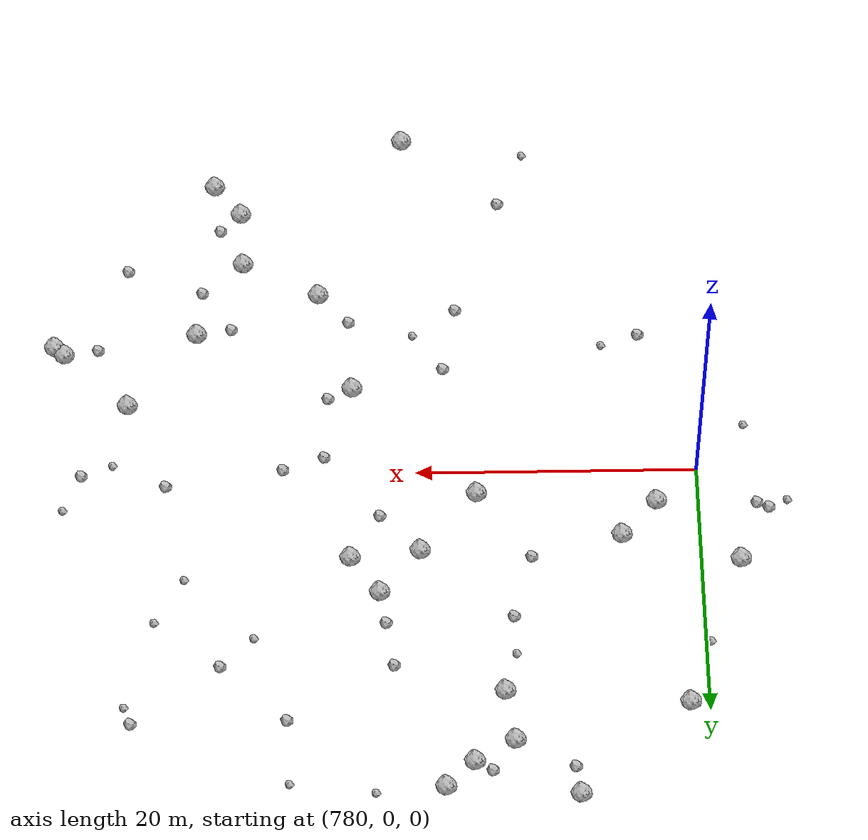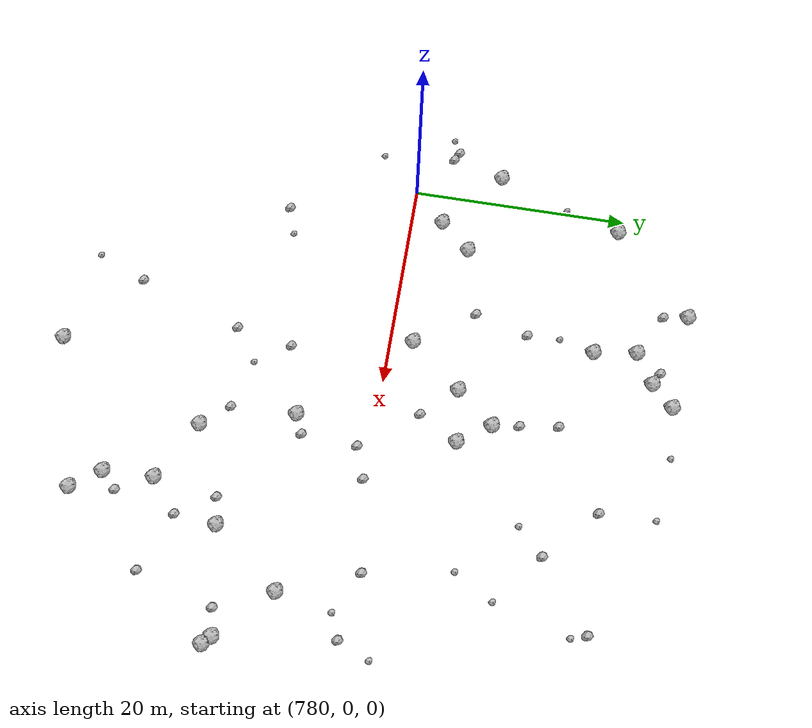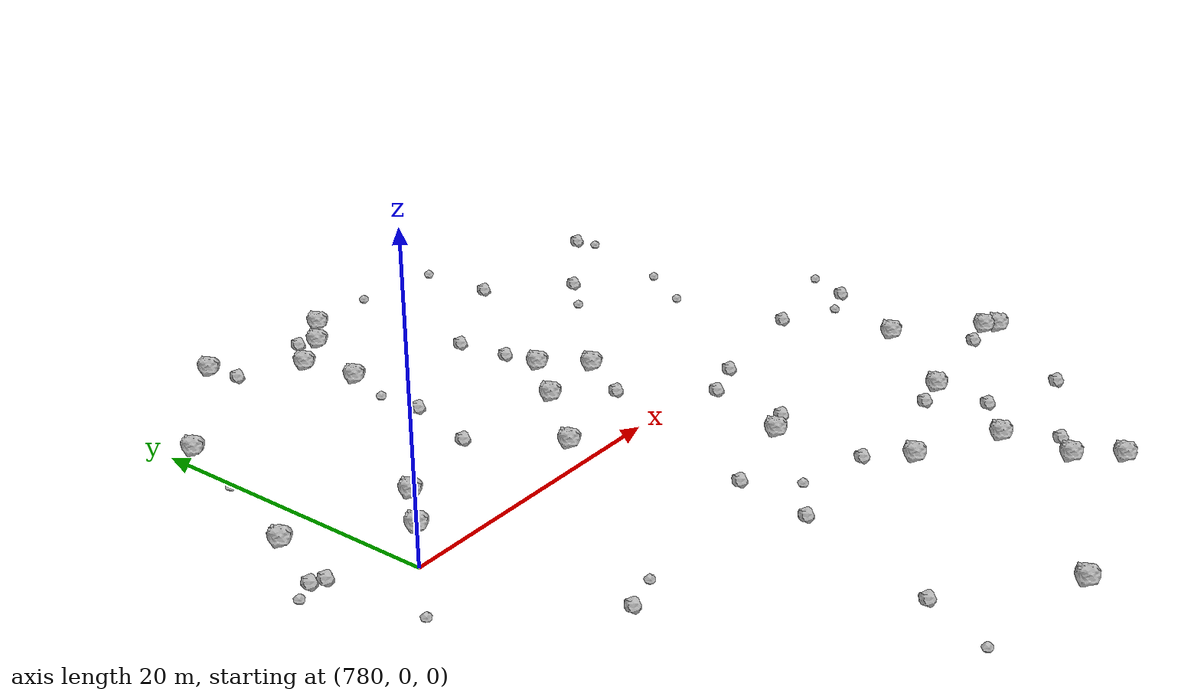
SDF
<sdf version="1.6">
 <world name="default">
  <include><uri>model://sun</uri></include>
  <model name="rock1_20_4">
   <include><uri>model://rock1</uri><pose>820.6350945711606 -5.886070270674416 0.5 0 0 0</pose></include>
  </model>
  <model name="rock1_20_5">
   <include><uri>model://rock1</uri><pose>789.174302273459 26.735412773269054 0.5 0 0 0</pose></include>
  </model>
  <model name="rock1_20_6">
   <include><uri>model://rock1</uri><pose>812.3763562479456 -18.41329730904943 0.5 0 0 0</pose></include>
  </model>
  <model name="rock1_20_7">
   <include><uri>model://rock1</uri><pose>796.3596019483537 24.06808977951519 0.5 0 0 0</pose></include>
  </model>
  <model name="rock1_20_8">
   <include><uri>model://rock1</uri><pose>804.748992065347 7.362493705190836 0.5 0 0 0</pose></include>
  </model>
  <model name="rock1_20_9">
   <include><uri>model://rock1</uri><pose>815.7095701272895 -12.098578191615047 0.5 0 0 0</pose></include>
  </model>
  <model name="rock1_20_10">
   <include><uri>model://rock1</uri><pose>781.3753424263355 19.5428205492751 0.5 0 0 0</pose></include>
  </model>
  <model name="rock1_20_11">
   <include><uri>model://rock1</uri><pose>802.7063896750199 10.270308584062555 0.5 0 0 0</pose></include>
  </model>
  <model name="rock1_20_12">
   <include><uri>model://rock1</uri><pose>799.8113386436355 6.8199711278421375 0.5 0 0 0</pose></include>
  </model>
  <model name="rock1_20_13">
   <include><uri>model://rock1</uri><pose>804.4942257574214 -7.160208227888944 0.5 0 0 0</pose></include>
  </model>
  <model name="rock1_20_14">
   <include><uri>model://rock1</uri><pose>794.1233192166974 18.477369264971507 0.5 0 0 0</pose></include>
  </model>
  <model name="rock1_20_15">
   <include><uri>model://rock1</uri><pose>785.5650849691579 5.699840650765324 0.5 0 0 0</pose></include>
  </model>
  <model name="rock1_20_16">
   <include><uri>model://rock1</uri><pose>800.6203771409281 -29.664151219868845 0.5 0 0 0</pose></include>
  </model>
  <model name="rock1_20_17">
   <include><uri>model://rock1</uri><pose>814.4836251054741 -25.578899734403475 0.5 0 0 0</pose></include>
  </model>
  <model name="rock1_20_18">
   <include><uri>model://rock1</uri><pose>825.2741021052876 -10.431142615567598 0.5 0 0 0</pose></include>
  </model>
  <model name="rock1_20_19">
   <include><uri>model://rock1</uri><pose>783.0146849213666 2.886046725405336 0.5 0 0 0</pose></include>
  </model>
  <model name="rock1_20_20">
   <include><uri>model://rock1</uri><pose>793.5373683498824 22.412171157085957 0.5 0 0 0</pose></include>
  </model>
  <model name="rock1_20_21">
   <include><uri>model://rock1</uri><pose>795.7491599494177 2.0506327617818414 0.5 0 0 0</pose></include>
  </model>
  <model name="rock1_20_22">
   <include><uri>model://rock1</uri><pose>798.3585958299683 26.029351957672155 0.5 0 0 0</pose></include>
  </model>
  <model name="rock1_20_23">
   <include><uri>model://rock1</uri><pose>812.5572141178634 -22.99430785112147 0.5 0 0 0</pose></include>
  </model>
  <model name="rock1_20_24">
   <include><uri>model://rock1</uri><pose>806.8779908178344 -15.524864762651836 0.5 0 0 0</pose></include>
  </model>
  <model name="rock1_20_25">
   <include><uri>model://rock1</uri><pose>825.9938034220598 -11.106890980946297 0.5 0 0 0</pose></include>
  </model>
  <model name="rock1_20_26">
   <include><uri>model://rock1</uri><pose>777.2761912708451 7.868366127772987 0.5 0 0 0</pose></include>
  </model>
  <model name="rock2_20_0">
   <include><uri>model://rock2</uri><pose>823.8045279501354 0.07975984007894965 0.3 0 0 0</pose></include>
  </model>
  <model name="rock2_20_1">
   <include><uri>model://rock2</uri><pose>801.771770372367 16.222175576323536 0.3 0 0 0</pose></include>
  </model>
  <model name="rock2_20_2">
   <include><uri>model://rock2</uri><pose>809.2006279529448 20.56500810708588 0.3 0 0 0</pose></include>
  </model>
  <model name="rock2_20_3">
   <include><uri>model://rock2</uri><pose>820.7469335932917 -17.966929379298126 0.3 0 0 0</pose></include>
  </model>
  <model name="rock2_20_4">
   <include><uri>model://rock2</uri><pose>802.2898200401646 12.736333977159248 0.3 0 0 0</pose></include>
  </model>
  <model name="rock2_20_5">
   <include><uri>model://rock2</uri><pose>813.2036470979123 -12.594342956008845 0.3 0 0 0</pose></include>
  </model>
  <model name="rock2_20_6">
   <include><uri>model://rock2</uri><pose>822.8192881729113 -10.887103272479123 0.3 0 0 0</pose></include>
  </model>
  <model name="rock2_20_7">
   <include><uri>model://rock2</uri><pose>775.8899213612169 3.045422776606202 0.3 0 0 0</pose></include>
  </model>
  <model name="rock2_20_8">
   <include><uri>model://rock2</uri><pose>791.9731753733087 7.39188990686165 0.3 0 0 0</pose></include>
  </model>
  <model name="rock2_20_9">
   <include><uri>model://rock2</uri><pose>817.8013192993257 1.0750269665148373 0.3 0 0 0</pose></include>
  </model>
  <model name="rock2_20_10">
   <include><uri>model://rock2</uri><pose>815.3232579383952 -15.910757192301372 0.3 0 0 0</pose></include>
  </model>
  <model name="rock2_20_11">
   <include><uri>model://rock2</uri><pose>783.7472780007181 -11.703090981496313 0.3 0 0 0</pose></include>
  </model>
  <model name="rock2_20_12">
   <include><uri>model://rock2</uri><pose>804.6933495007237 -13.118758626076211 0.3 0 0 0</pose></include>
  </model>
  <model name="rock2_20_13">
   <include><uri>model://rock2</uri><pose>793.3579517313858 12.33846834143867 0.3 0 0 0</pose></include>
  </model>
  <model name="rock2_20_14">
   <include><uri>model://rock2</uri><pose>809.4678825465874 -0.22625874869687124 0.3 0 0 0</pose></include>
  </model>
  <model name="rock2_20_15">
   <include><uri>model://rock2</uri><pose>806.230208976774 -6.361623056017464 0.3 0 0 0</pose></include>
  </model>
  <model name="rock2_20_16">
   <include><uri>model://rock2</uri><pose>814.0232911935135 -21.555299323820048 0.3 0 0 0</pose></include>
  </model>
  <model name="rock2_20_17">
   <include><uri>model://rock2</uri><pose>802.6158949766377 3.795293628187167 0.3 0 0 0</pose></include>
  </model>
  <model name="rock2_20_18">
   <include><uri>model://rock2</uri><pose>813.8381240358872 16.163286068862476 0.3 0 0 0</pose></include>
  </model>
  <model name="rock2_20_19">
   <include><uri>model://rock2</uri><pose>775.0613225388645 3.4456946327627023 0.3 0 0 0</pose></include>
  </model>
  <model name="rock2_20_20">
   <include><uri>model://rock2</uri><pose>795.1374533014897 24.73309095741778 0.3 0 0 0</pose></include>
  </model>
  <model name="rock2_20_21">
   <include><uri>model://rock2</uri><pose>789.4649412253866 24.510589043099337 0.3 0 0 0</pose></include>
  </model>
  <model name="rock2_20_22">
   <include><uri>model://rock2</uri><pose>819.9771104838715 20.70184599855446 0.3 0 0 0</pose></include>
  </model>
  <model name="rock2_20_23">
   <include><uri>model://rock2</uri><pose>806.5224293923878 -1.2693754602583454 0.3 0 0 0</pose></include>
  </model>
  <model name="rock2_20_24">
   <include><uri>model://rock2</uri><pose>793.6175438310157 -23.77370292303079 0.3 0 0 0</pose></include>
  </model>
  <model name="rock2_20_25">
   <include><uri>model://rock2</uri><pose>796.9464578670767 -14.091346917966494 0.3 0 0 0</pose></include>
  </model>
  <model name="rock2_20_26">
   <include><uri>model://rock2</uri><pose>797.9340320227461 -8.86828763507744 0.3 0 0 0</pose></include>
  </model>
  <model name="rock3_20_0">
   <include><uri>model://rock3</uri><pose>809.010242648686 25.572507670611813 0.2 0 0 0</pose></include>
  </model>
  <model name="rock3_20_1">
   <include><uri>model://rock3</uri><pose>803.1096869960559 26.338917963047578 0.2 0 0 0</pose></include>
  </model>
  <model name="rock3_20_2">
   <include><uri>model://rock3</uri><pose>821.5607650165263 -0.8566355344684702 0.2 0 0 0</pose></include>
  </model>
  <model name="rock3_20_3">
   <include><uri>model://rock3</uri><pose>800.0406485074192 -11.950498645989317 0.2 0 0 0</pose></include>
  </model>
  <model name="rock3_20_4">
   <include><uri>model://rock3</uri><pose>816.3711940659747 8.910266427128597 0.2 0 0 0</pose></include>
  </model>
  <model name="rock3_20_5">
   <include><uri>model://rock3</uri><pose>791.6531935619727 -28.390009245543208 0.2 0 0 0</pose></include>
  </model>
  <model name="rock3_20_6">
   <include><uri>model://rock3</uri><pose>776.4766504467473 -3.723511954972743 0.2 0 0 0</pose></include>
  </model>
  <model name="rock3_20_7">
   <include><uri>model://rock3</uri><pose>773.6846387092191 2.782728778587348 0.2 0 0 0</pose></include>
  </model>
  <model name="rock3_20_8">
   <include><uri>model://rock3</uri><pose>825.0444151893157 2.9324171051234558 0.2 0 0 0</pose></include>
  </model>
  <model name="rock3_20_9">
   <include><uri>model://rock3</uri><pose>811.4692696128708 13.814107819108365 0.2 0 0 0</pose></include>
  </model>
  <model name="rock3_20_10">
   <include><uri>model://rock3</uri><pose>779.6523646761465 14.497374899434242 0.2 0 0 0</pose></include>
  </model>
  <model name="rock3_20_11">
   <include><uri>model://rock3</uri><pose>786.3947880201481 -10.885688525543813 0.2 0 0 0</pose></include>
  </model>
  <model name="rock3_20_12">
   <include><uri>model://rock3</uri><pose>793.2160641309218 15.324991958228829 0.2 0 0 0</pose></include>
  </model>
  <model name="rock3_20_13">
   <include><uri>model://rock3</uri><pose>820.4176165342417 19.299428835659654 0.2 0 0 0</pose></include>
  </model>
  <model name="rock3_20_14">
   <include><uri>model://rock3</uri><pose>818.4326270439465 12.427590784653553 0.2 0 0 0</pose></include>
  </model>
 </world>
</sdf>
